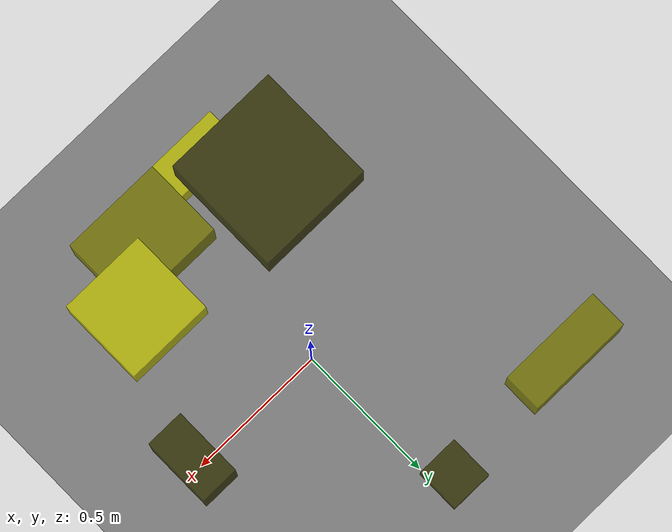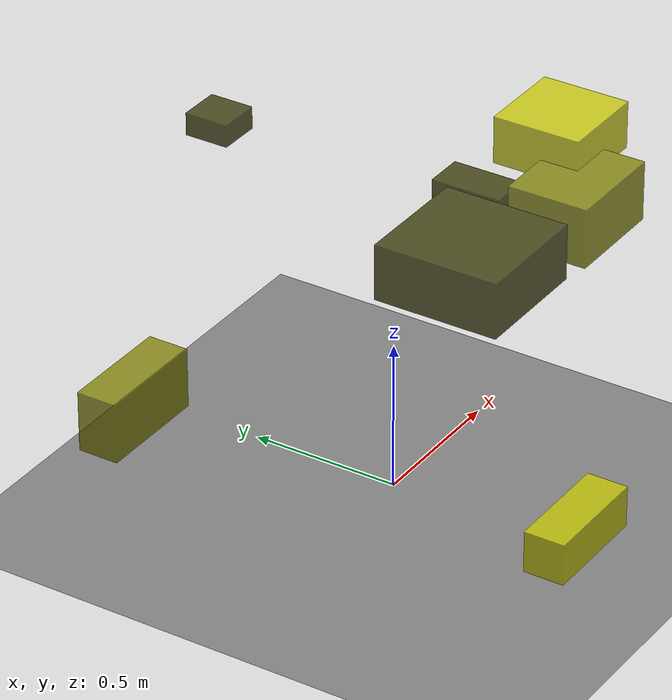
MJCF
<?xml version="1.0"?>
<mujoco model="obstacle_scene">
  <compiler angle="radian" coordinate="local"/>
  <option timestep="0.001" gravity="0 0 -9.81"/>

  <asset>
    <material name="obstacle_mat" rgba="0.8 0.8 0.0 0.8"/>
    <material name="ground_mat" rgba="0.5 0.5 0.5 1"/>
  </asset>

  <worldbody>
    <!-- Ground plane -->
    <geom name="ground" type="plane" size="3 3 0.1" material="ground_mat"/>

    <!-- Obstacles -->
    <body name="obstacle_0" pos="0.014884 0.635933 1.082580">
      <geom name="obs_0" type="box" size="0.069901 0.073262 0.037554" rgba="0.2 0.2 0.0 0.8"/>
    </body>
    <body name="obstacle_1" pos="0.189908 -0.509156 1.066974">
      <geom name="obs_1" type="box" size="0.169548 0.131791 0.097844" rgba="0.5 0.5 0.0 0.8"/>
    </body>
    <body name="obstacle_2" pos="-0.121817 -0.714891 0.166130">
      <geom name="obs_2" type="box" size="0.185968 0.068347 0.070493" rgba="0.8 0.8 0.0 0.8"/>
    </body>
    <body name="obstacle_3" pos="0.525397 0.031430 0.695262">
      <geom name="obs_3" type="box" size="0.066711 0.120376 0.118766" rgba="0.2 0.2 0.0 0.8"/>
    </body>
    <body name="obstacle_4" pos="-0.548351 0.578510 0.408162">
      <geom name="obs_4" type="box" size="0.188164 0.068096 0.101561" rgba="0.5 0.5 0.0 0.8"/>
    </body>
    <body name="obstacle_5" pos="0.350646 -0.359164 1.184225">
      <geom name="obs_5" type="box" size="0.146121 0.143746 0.077804" rgba="0.8 0.8 0.0 0.8"/>
    </body>
    <body name="obstacle_6" pos="-0.224665 -0.401191 1.037688">
      <geom name="obs_6" type="box" size="0.198266 0.204122 0.091743" rgba="0.2 0.2 0.0 0.8"/>
    </body>
  </worldbody>
</mujoco>
